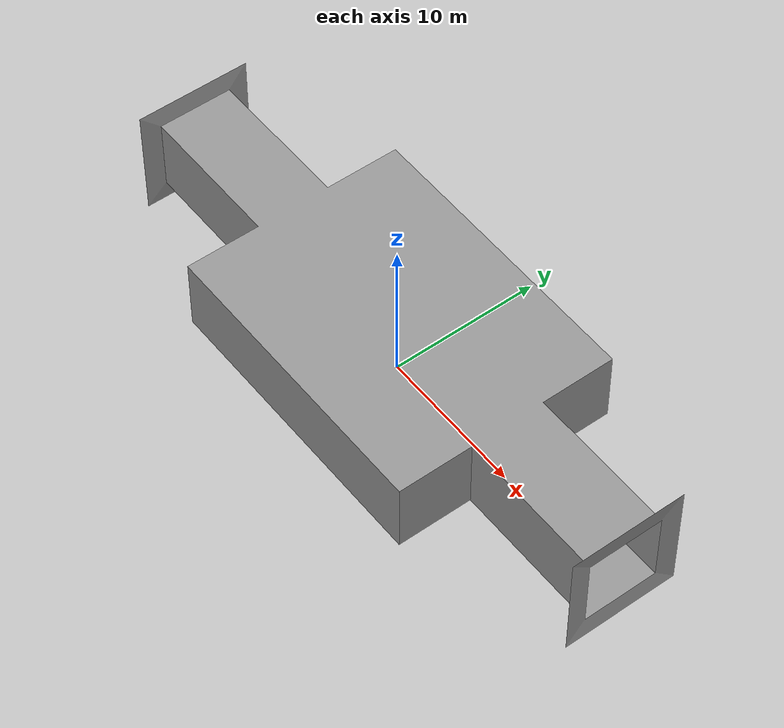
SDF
<?xml version="1.0" ?>
<sdf version="1.6">
  <model name="urban_room_2way">
    <static>true</static>
    <link name="base">
      <collision name="collision">
        <pose>0 0 0 0 0 0</pose>
        <geometry>
          <mesh>
            <uri>/home/daniel/ros2_ws/src/guided_navigation/models/room/meshes/room_2way.dae</uri>
          </mesh>
        </geometry>
      </collision>
      <visual name="visual">
        <geometry>
          <mesh>
            <uri>/home/daniel/ros2_ws/src/guided_navigation/models/room/meshes/room_2way.dae</uri>
          </mesh>
        </geometry>
      </visual>
    </link>
  </model>
</sdf>
